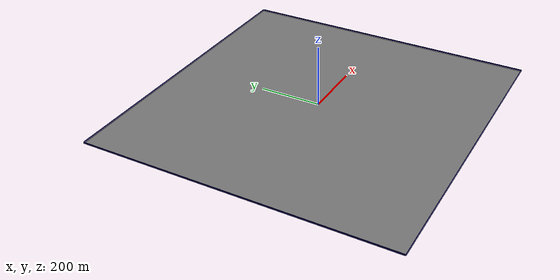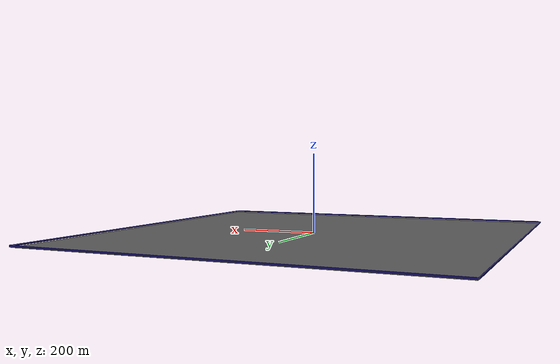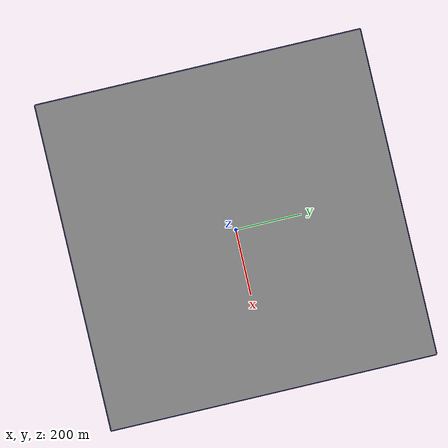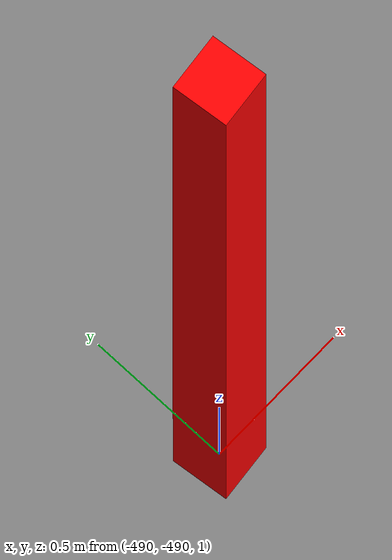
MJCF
<mujoco model="unnamed_model">
  <default>
    <default class="/" />
    <default class="border/" />
    <default class="border_1/" />
    <default class="border_2/" />
    <default class="border_3/" />
    <default class="stone/" />
    <default class="stone_1/" />
  </default>
  <worldbody>
    <body name="border/">
      <body name="border/border" pos="0 501 2">
        <geom name="border/border_geom" class="border/" type="box" size="500 1 2" rgba="0.035000000000000003 0.016 0.28999999999999998 1" />
      </body>
    </body>
    <body name="border_1/">
      <body name="border_1/border" pos="0 -501 2">
        <geom name="border_1/border_geom" class="border_1/" type="box" size="500 1 2" rgba="0.035000000000000003 0.016 0.28999999999999998 1" />
      </body>
    </body>
    <body name="border_2/">
      <body name="border_2/border" pos="501 0 2">
        <geom name="border_2/border_geom" class="border_2/" type="box" size="1 500 2" rgba="0.035000000000000003 0.016 0.28999999999999998 1" />
      </body>
    </body>
    <body name="border_3/">
      <body name="border_3/border" pos="-501 0 2">
        <geom name="border_3/border_geom" class="border_3/" type="box" size="1 500 2" rgba="0.035000000000000003 0.016 0.28999999999999998 1" />
      </body>
    </body>
    <body name="stone/">
      <body name="stone/stone" pos="-490 -490 3" euler="0 0 -83.730964458924689">
        <geom name="stone/stone_geom" class="stone/" type="box" size="0.10000000000000001 0.10000000000000001 2" rgba="1 0 0 1" />
      </body>
    </body>
    <body name="stone_1/">
      <body name="stone_1/stone" pos="-180 -180 3" euler="0 0 -3.0001348353643493">
        <geom name="stone_1/stone_geom" class="stone_1/" type="box" size="0.10000000000000001 0.10000000000000001 2" rgba="1 0 0 1" />
      </body>
    </body>
    <geom name="base_plane" class="/" type="plane" size="500 500 0.10000000000000001" />
  </worldbody>
</mujoco>
